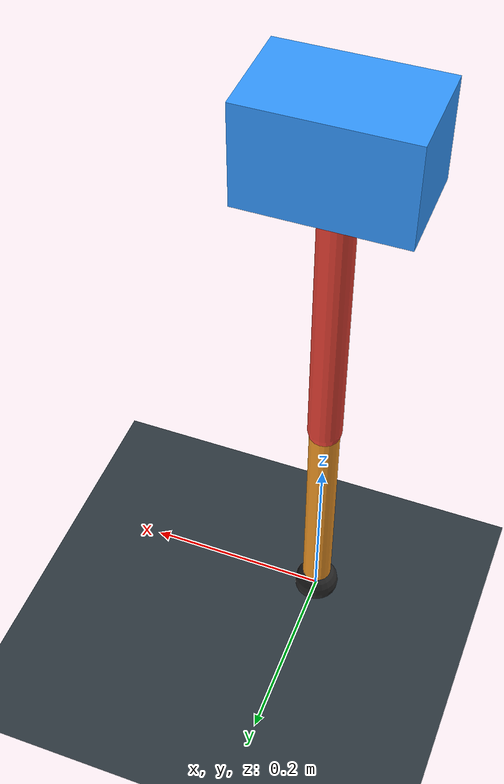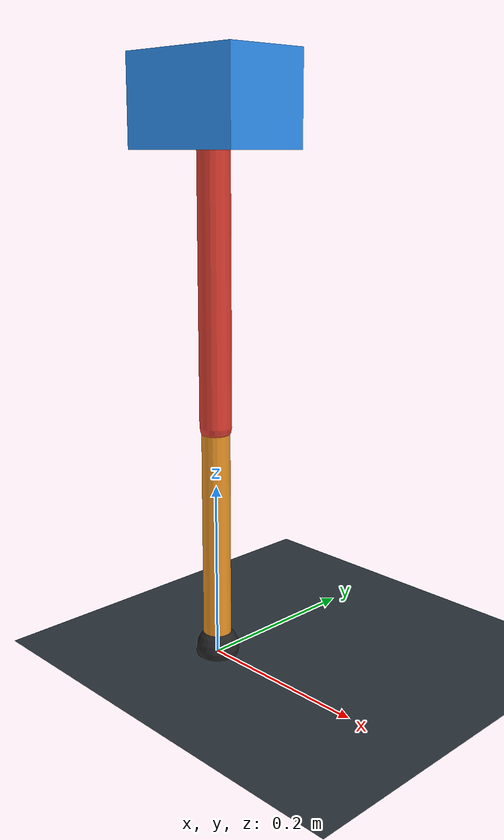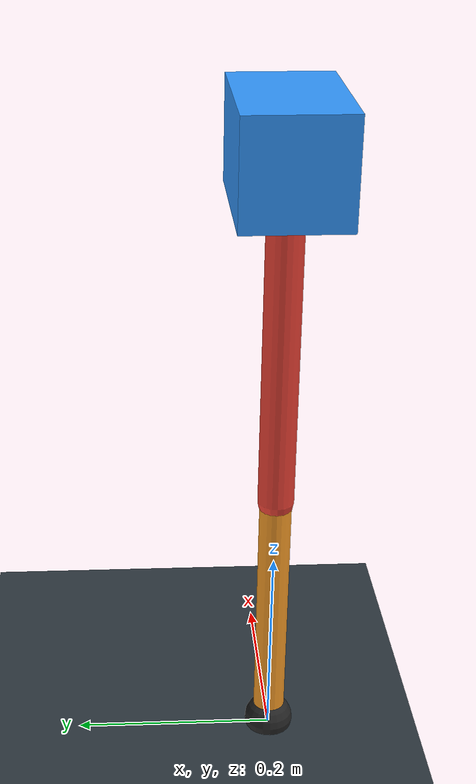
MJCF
<mujoco model="single_axis_two_bar">
  <compiler angle="radian" inertiafromgeom="true"/>
  <option timestep="0.001" integrator="implicitfast" gravity="0 0 -9.81"/>
  <default>
    <joint damping="0.08"/>
    <geom friction="1.2 0.01 0.0001" condim="3"/>
  </default>
  <worldbody>
    <geom name="floor" type="plane" size="5 5 0.1" rgba="0.18 0.22 0.25 1"/>
    <body name="carriage" pos="0 0 0.6180849266847571">
      <joint name="pole_slide" type="slide" axis="0 0 1"/>
      <geom name="payload" type="box" size="0.08 0.05 0.05" mass="3.159716913957604" rgba="0.2 0.6 1 1"/>
      <body name="thigh" pos="0 0 0">
        <joint name="hip" type="hinge" axis="0 1 0"/>
        <geom name="thigh_link" type="capsule" fromto="0 0 0 0 0 -0.3487221716722059" size="0.018" mass="0.24846915527339286" rgba="0.9 0.25 0.2 1"/>
        <body name="shank" pos="0 0 -0.3487221716722059">
          <joint name="knee" type="hinge" axis="0 1 0"/>
          <geom name="shank_link" type="capsule" fromto="0 0 0 0 0 -0.26270558779661585" size="0.016" mass="0.18718120265316016" rgba="0.95 0.6 0.15 1"/>
          <geom name="foot" type="sphere" pos="0 0 -0.26270558779661585" size="0.025" mass="0.03" rgba="0.15 0.15 0.15 1"/>
          <site name="toe" pos="0 0 -0.26270558779661585" size="0.008"/>
        </body>
      </body>
    </body>
  </worldbody>
  <actuator>
    <motor name="hip_motor" joint="hip" ctrlrange="-35.455051526101805 35.455051526101805"/>
    <motor name="knee_motor" joint="knee" ctrlrange="-124.32748539997306 124.32748539997306"/>
  </actuator>
</mujoco>
